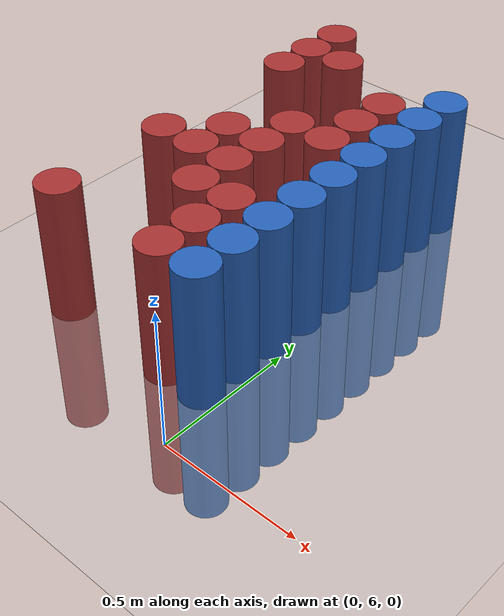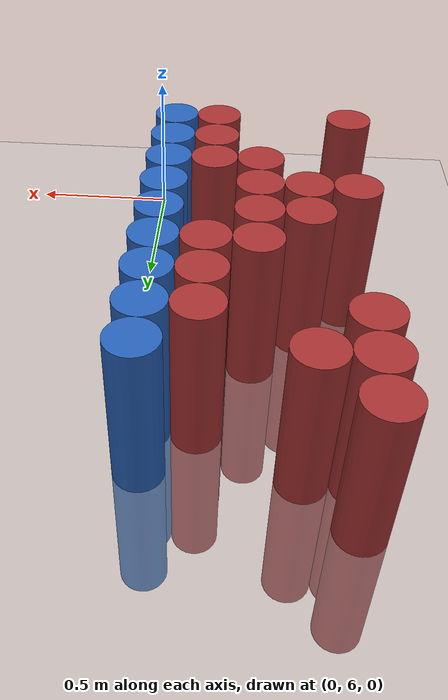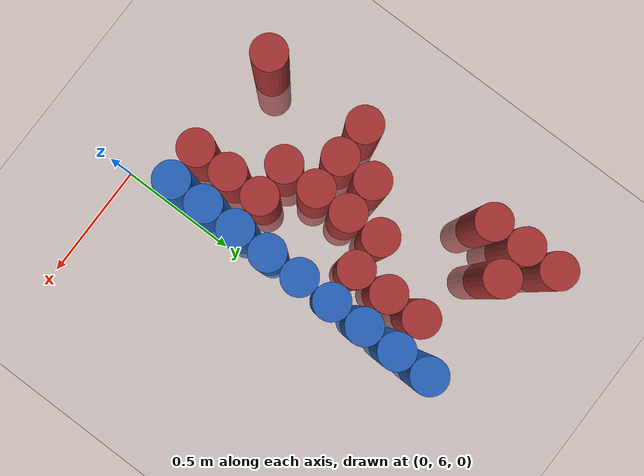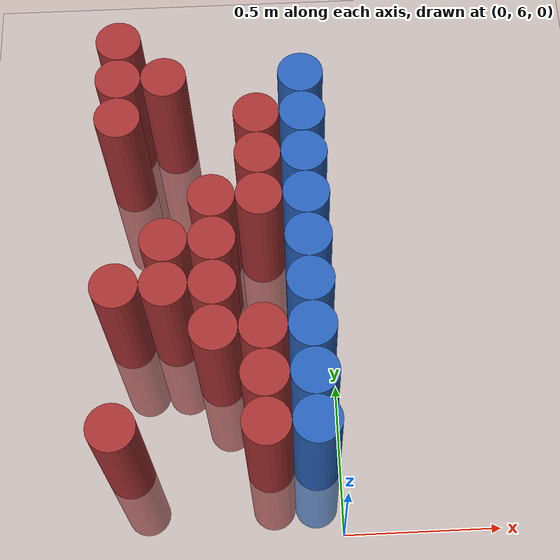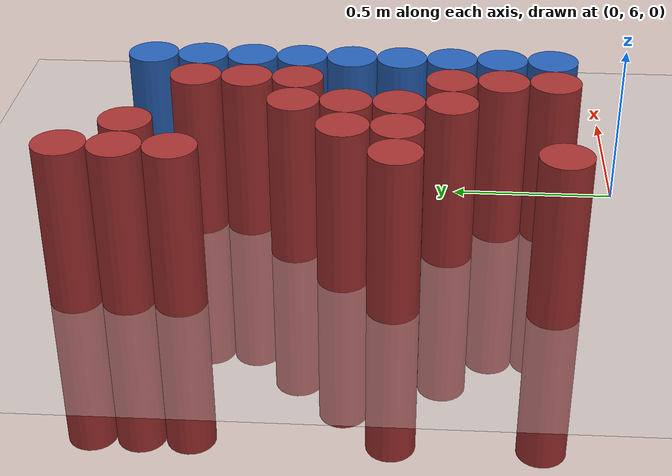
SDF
<sdf version="1.6">
 <world name="default">
  <model name="ground_plane">
   <static>1</static>
   <link name="link">
    <collision name="collision">
     <geometry><plane><normal>0 0 1</normal><size>100 100</size></plane></geometry>
     <surface><friction><ode><mu>100</mu><mu2>50</mu2></ode></friction></surface>
    </collision>
    <visual name="visual">
     <cast_shadows>0</cast_shadows>
     <geometry><plane><normal>0 0 1</normal><size>100 100</size></plane></geometry>
     <material>
      <script><uri>file://media/materials/scripts/gazebo.material</uri><name>Gazebo/Grey</name></script>
     </material>
    </visual>
   </link>
  </model>
  <model name="unit_cylinder_254">
   <static>1</static>
   <pose>-0.675000 6.225000 0.000000 0.000000 0.000000 0.000000</pose>
   <link name="link">
    <inertial>
     <mass>1</mass>
     <inertia><ixx>0.145833</ixx><ixy>0</ixy><ixz>0</ixz><iyy>0.145833</iyy><iyz>0</iyz><izz>0.125</izz></inertia>
    </inertial>
    <collision name="collision">
     <geometry><cylinder><radius>0.075000</radius><length>1</length></cylinder></geometry>
    </collision>
    <visual name="visual">
     <geometry><cylinder><radius>0.075000</radius><length>1</length></cylinder></geometry>
     <material>
      <ambient>0.648000 0.192000 0.192000 1</ambient>
      <diffuse>0.648000 0.192000 0.192000 1</diffuse>
     </material>
     <material>
      <script><name>Gazebo/Grey</name><uri>file://media/materials/scripts/gazebo.material</uri></script>
     </material>
    </visual>
   </link>
  </model>
  <model name="unit_cylinder_255">
   <static>1</static>
   <pose>-0.675000 6.675000 0.000000 0.000000 0.000000 0.000000</pose>
   <link name="link">
    <inertial>
     <mass>1</mass>
     <inertia><ixx>0.145833</ixx><ixy>0</ixy><ixz>0</ixz><iyy>0.145833</iyy><iyz>0</iyz><izz>0.125</izz></inertia>
    </inertial>
    <collision name="collision">
     <geometry><cylinder><radius>0.075000</radius><length>1</length></cylinder></geometry>
    </collision>
    <visual name="visual">
     <geometry><cylinder><radius>0.075000</radius><length>1</length></cylinder></geometry>
     <material>
      <ambient>0.648000 0.192000 0.192000 1</ambient>
      <diffuse>0.648000 0.192000 0.192000 1</diffuse>
     </material>
     <material>
      <script><name>Gazebo/Grey</name><uri>file://media/materials/scripts/gazebo.material</uri></script>
     </material>
    </visual>
   </link>
  </model>
  <model name="unit_cylinder_256">
   <static>1</static>
   <pose>-0.675000 7.275000 0.000000 0.000000 0.000000 0.000000</pose>
   <link name="link">
    <inertial>
     <mass>1</mass>
     <inertia><ixx>0.145833</ixx><ixy>0</ixy><ixz>0</ixz><iyy>0.145833</iyy><iyz>0</iyz><izz>0.125</izz></inertia>
    </inertial>
    <collision name="collision">
     <geometry><cylinder><radius>0.075000</radius><length>1</length></cylinder></geometry>
    </collision>
    <visual name="visual">
     <geometry><cylinder><radius>0.075000</radius><length>1</length></cylinder></geometry>
     <material>
      <ambient>0.648000 0.192000 0.192000 1</ambient>
      <diffuse>0.648000 0.192000 0.192000 1</diffuse>
     </material>
     <material>
      <script><name>Gazebo/Grey</name><uri>file://media/materials/scripts/gazebo.material</uri></script>
     </material>
    </visual>
   </link>
  </model>
  <model name="unit_cylinder_257">
   <static>1</static>
   <pose>-0.675000 7.425000 0.000000 0.000000 0.000000 0.000000</pose>
   <link name="link">
    <inertial>
     <mass>1</mass>
     <inertia><ixx>0.145833</ixx><ixy>0</ixy><ixz>0</ixz><iyy>0.145833</iyy><iyz>0</iyz><izz>0.125</izz></inertia>
    </inertial>
    <collision name="collision">
     <geometry><cylinder><radius>0.075000</radius><length>1</length></cylinder></geometry>
    </collision>
    <visual name="visual">
     <geometry><cylinder><radius>0.075000</radius><length>1</length></cylinder></geometry>
     <material>
      <ambient>0.648000 0.192000 0.192000 1</ambient>
      <diffuse>0.648000 0.192000 0.192000 1</diffuse>
     </material>
     <material>
      <script><name>Gazebo/Grey</name><uri>file://media/materials/scripts/gazebo.material</uri></script>
     </material>
    </visual>
   </link>
  </model>
  <model name="unit_cylinder_258">
   <static>1</static>
   <pose>-0.675000 7.575000 0.000000 0.000000 0.000000 0.000000</pose>
   <link name="link">
    <inertial>
     <mass>1</mass>
     <inertia><ixx>0.145833</ixx><ixy>0</ixy><ixz>0</ixz><iyy>0.145833</iyy><iyz>0</iyz><izz>0.125</izz></inertia>
    </inertial>
    <collision name="collision">
     <geometry><cylinder><radius>0.075000</radius><length>1</length></cylinder></geometry>
    </collision>
    <visual name="visual">
     <geometry><cylinder><radius>0.075000</radius><length>1</length></cylinder></geometry>
     <material>
      <ambient>0.648000 0.192000 0.192000 1</ambient>
      <diffuse>0.648000 0.192000 0.192000 1</diffuse>
     </material>
     <material>
      <script><name>Gazebo/Grey</name><uri>file://media/materials/scripts/gazebo.material</uri></script>
     </material>
    </visual>
   </link>
  </model>
  <model name="unit_cylinder_267">
   <static>1</static>
   <pose>-0.525000 6.675000 0.000000 0.000000 0.000000 0.000000</pose>
   <link name="link">
    <inertial>
     <mass>1</mass>
     <inertia><ixx>0.145833</ixx><ixy>0</ixy><ixz>0</ixz><iyy>0.145833</iyy><iyz>0</iyz><izz>0.125</izz></inertia>
    </inertial>
    <collision name="collision">
     <geometry><cylinder><radius>0.075000</radius><length>1</length></cylinder></geometry>
    </collision>
    <visual name="visual">
     <geometry><cylinder><radius>0.075000</radius><length>1</length></cylinder></geometry>
     <material>
      <ambient>0.648000 0.192000 0.192000 1</ambient>
      <diffuse>0.648000 0.192000 0.192000 1</diffuse>
     </material>
     <material>
      <script><name>Gazebo/Grey</name><uri>file://media/materials/scripts/gazebo.material</uri></script>
     </material>
    </visual>
   </link>
  </model>
  <model name="unit_cylinder_268">
   <static>1</static>
   <pose>-0.525000 6.825000 0.000000 0.000000 0.000000 0.000000</pose>
   <link name="link">
    <inertial>
     <mass>1</mass>
     <inertia><ixx>0.145833</ixx><ixy>0</ixy><ixz>0</ixz><iyy>0.145833</iyy><iyz>0</iyz><izz>0.125</izz></inertia>
    </inertial>
    <collision name="collision">
     <geometry><cylinder><radius>0.075000</radius><length>1</length></cylinder></geometry>
    </collision>
    <visual name="visual">
     <geometry><cylinder><radius>0.075000</radius><length>1</length></cylinder></geometry>
     <material>
      <ambient>0.648000 0.192000 0.192000 1</ambient>
      <diffuse>0.648000 0.192000 0.192000 1</diffuse>
     </material>
     <material>
      <script><name>Gazebo/Grey</name><uri>file://media/materials/scripts/gazebo.material</uri></script>
     </material>
    </visual>
   </link>
  </model>
  <model name="unit_cylinder_269">
   <static>1</static>
   <pose>-0.525000 7.425000 0.000000 0.000000 0.000000 0.000000</pose>
   <link name="link">
    <inertial>
     <mass>1</mass>
     <inertia><ixx>0.145833</ixx><ixy>0</ixy><ixz>0</ixz><iyy>0.145833</iyy><iyz>0</iyz><izz>0.125</izz></inertia>
    </inertial>
    <collision name="collision">
     <geometry><cylinder><radius>0.075000</radius><length>1</length></cylinder></geometry>
    </collision>
    <visual name="visual">
     <geometry><cylinder><radius>0.075000</radius><length>1</length></cylinder></geometry>
     <material>
      <ambient>0.648000 0.192000 0.192000 1</ambient>
      <diffuse>0.648000 0.192000 0.192000 1</diffuse>
     </material>
     <material>
      <script><name>Gazebo/Grey</name><uri>file://media/materials/scripts/gazebo.material</uri></script>
     </material>
    </visual>
   </link>
  </model>
  <model name="unit_cylinder_276">
   <static>1</static>
   <pose>-0.375000 6.525000 0.000000 0.000000 0.000000 0.000000</pose>
   <link name="link">
    <inertial>
     <mass>1</mass>
     <inertia><ixx>0.145833</ixx><ixy>0</ixy><ixz>0</ixz><iyy>0.145833</iyy><iyz>0</iyz><izz>0.125</izz></inertia>
    </inertial>
    <collision name="collision">
     <geometry><cylinder><radius>0.075000</radius><length>1</length></cylinder></geometry>
    </collision>
    <visual name="visual">
     <geometry><cylinder><radius>0.075000</radius><length>1</length></cylinder></geometry>
     <material>
      <ambient>0.648000 0.192000 0.192000 1</ambient>
      <diffuse>0.648000 0.192000 0.192000 1</diffuse>
     </material>
     <material>
      <script><name>Gazebo/Grey</name><uri>file://media/materials/scripts/gazebo.material</uri></script>
     </material>
    </visual>
   </link>
  </model>
  <model name="unit_cylinder_277">
   <static>1</static>
   <pose>-0.375000 6.675000 0.000000 0.000000 0.000000 0.000000</pose>
   <link name="link">
    <inertial>
     <mass>1</mass>
     <inertia><ixx>0.145833</ixx><ixy>0</ixy><ixz>0</ixz><iyy>0.145833</iyy><iyz>0</iyz><izz>0.125</izz></inertia>
    </inertial>
    <collision name="collision">
     <geometry><cylinder><radius>0.075000</radius><length>1</length></cylinder></geometry>
    </collision>
    <visual name="visual">
     <geometry><cylinder><radius>0.075000</radius><length>1</length></cylinder></geometry>
     <material>
      <ambient>0.648000 0.192000 0.192000 1</ambient>
      <diffuse>0.648000 0.192000 0.192000 1</diffuse>
     </material>
     <material>
      <script><name>Gazebo/Grey</name><uri>file://media/materials/scripts/gazebo.material</uri></script>
     </material>
    </visual>
   </link>
  </model>
  <model name="unit_cylinder_278">
   <static>1</static>
   <pose>-0.375000 6.825000 0.000000 0.000000 0.000000 0.000000</pose>
   <link name="link">
    <inertial>
     <mass>1</mass>
     <inertia><ixx>0.145833</ixx><ixy>0</ixy><ixz>0</ixz><iyy>0.145833</iyy><iyz>0</iyz><izz>0.125</izz></inertia>
    </inertial>
    <collision name="collision">
     <geometry><cylinder><radius>0.075000</radius><length>1</length></cylinder></geometry>
    </collision>
    <visual name="visual">
     <geometry><cylinder><radius>0.075000</radius><length>1</length></cylinder></geometry>
     <material>
      <ambient>0.648000 0.192000 0.192000 1</ambient>
      <diffuse>0.648000 0.192000 0.192000 1</diffuse>
     </material>
     <material>
      <script><name>Gazebo/Grey</name><uri>file://media/materials/scripts/gazebo.material</uri></script>
     </material>
    </visual>
   </link>
  </model>
  <model name="unit_cylinder_279">
   <static>1</static>
   <pose>-0.375000 6.975000 0.000000 0.000000 0.000000 0.000000</pose>
   <link name="link">
    <inertial>
     <mass>1</mass>
     <inertia><ixx>0.145833</ixx><ixy>0</ixy><ixz>0</ixz><iyy>0.145833</iyy><iyz>0</iyz><izz>0.125</izz></inertia>
    </inertial>
    <collision name="collision">
     <geometry><cylinder><radius>0.075000</radius><length>1</length></cylinder></geometry>
    </collision>
    <visual name="visual">
     <geometry><cylinder><radius>0.075000</radius><length>1</length></cylinder></geometry>
     <material>
      <ambient>0.648000 0.192000 0.192000 1</ambient>
      <diffuse>0.648000 0.192000 0.192000 1</diffuse>
     </material>
     <material>
      <script><name>Gazebo/Grey</name><uri>file://media/materials/scripts/gazebo.material</uri></script>
     </material>
    </visual>
   </link>
  </model>
  <model name="unit_cylinder_285">
   <static>1</static>
   <pose>-0.225000 6.225000 0.000000 0.000000 0.000000 0.000000</pose>
   <link name="link">
    <inertial>
     <mass>1</mass>
     <inertia><ixx>0.145833</ixx><ixy>0</ixy><ixz>0</ixz><iyy>0.145833</iyy><iyz>0</iyz><izz>0.125</izz></inertia>
    </inertial>
    <collision name="collision">
     <geometry><cylinder><radius>0.075000</radius><length>1</length></cylinder></geometry>
    </collision>
    <visual name="visual">
     <geometry><cylinder><radius>0.075000</radius><length>1</length></cylinder></geometry>
     <material>
      <ambient>0.648000 0.192000 0.192000 1</ambient>
      <diffuse>0.648000 0.192000 0.192000 1</diffuse>
     </material>
     <material>
      <script><name>Gazebo/Grey</name><uri>file://media/materials/scripts/gazebo.material</uri></script>
     </material>
    </visual>
   </link>
  </model>
  <model name="unit_cylinder_286">
   <static>1</static>
   <pose>-0.225000 6.375000 0.000000 0.000000 0.000000 0.000000</pose>
   <link name="link">
    <inertial>
     <mass>1</mass>
     <inertia><ixx>0.145833</ixx><ixy>0</ixy><ixz>0</ixz><iyy>0.145833</iyy><iyz>0</iyz><izz>0.125</izz></inertia>
    </inertial>
    <collision name="collision">
     <geometry><cylinder><radius>0.075000</radius><length>1</length></cylinder></geometry>
    </collision>
    <visual name="visual">
     <geometry><cylinder><radius>0.075000</radius><length>1</length></cylinder></geometry>
     <material>
      <ambient>0.648000 0.192000 0.192000 1</ambient>
      <diffuse>0.648000 0.192000 0.192000 1</diffuse>
     </material>
     <material>
      <script><name>Gazebo/Grey</name><uri>file://media/materials/scripts/gazebo.material</uri></script>
     </material>
    </visual>
   </link>
  </model>
  <model name="unit_cylinder_287">
   <static>1</static>
   <pose>-0.225000 6.525000 0.000000 0.000000 0.000000 0.000000</pose>
   <link name="link">
    <inertial>
     <mass>1</mass>
     <inertia><ixx>0.145833</ixx><ixy>0</ixy><ixz>0</ixz><iyy>0.145833</iyy><iyz>0</iyz><izz>0.125</izz></inertia>
    </inertial>
    <collision name="collision">
     <geometry><cylinder><radius>0.075000</radius><length>1</length></cylinder></geometry>
    </collision>
    <visual name="visual">
     <geometry><cylinder><radius>0.075000</radius><length>1</length></cylinder></geometry>
     <material>
      <ambient>0.648000 0.192000 0.192000 1</ambient>
      <diffuse>0.648000 0.192000 0.192000 1</diffuse>
     </material>
     <material>
      <script><name>Gazebo/Grey</name><uri>file://media/materials/scripts/gazebo.material</uri></script>
     </material>
    </visual>
   </link>
  </model>
  <model name="unit_cylinder_288">
   <static>1</static>
   <pose>-0.225000 6.975000 0.000000 0.000000 0.000000 0.000000</pose>
   <link name="link">
    <inertial>
     <mass>1</mass>
     <inertia><ixx>0.145833</ixx><ixy>0</ixy><ixz>0</ixz><iyy>0.145833</iyy><iyz>0</iyz><izz>0.125</izz></inertia>
    </inertial>
    <collision name="collision">
     <geometry><cylinder><radius>0.075000</radius><length>1</length></cylinder></geometry>
    </collision>
    <visual name="visual">
     <geometry><cylinder><radius>0.075000</radius><length>1</length></cylinder></geometry>
     <material>
      <ambient>0.648000 0.192000 0.192000 1</ambient>
      <diffuse>0.648000 0.192000 0.192000 1</diffuse>
     </material>
     <material>
      <script><name>Gazebo/Grey</name><uri>file://media/materials/scripts/gazebo.material</uri></script>
     </material>
    </visual>
   </link>
  </model>
  <model name="unit_cylinder_289">
   <static>1</static>
   <pose>-0.225000 7.125000 0.000000 0.000000 0.000000 0.000000</pose>
   <link name="link">
    <inertial>
     <mass>1</mass>
     <inertia><ixx>0.145833</ixx><ixy>0</ixy><ixz>0</ixz><iyy>0.145833</iyy><iyz>0</iyz><izz>0.125</izz></inertia>
    </inertial>
    <collision name="collision">
     <geometry><cylinder><radius>0.075000</radius><length>1</length></cylinder></geometry>
    </collision>
    <visual name="visual">
     <geometry><cylinder><radius>0.075000</radius><length>1</length></cylinder></geometry>
     <material>
      <ambient>0.648000 0.192000 0.192000 1</ambient>
      <diffuse>0.648000 0.192000 0.192000 1</diffuse>
     </material>
     <material>
      <script><name>Gazebo/Grey</name><uri>file://media/materials/scripts/gazebo.material</uri></script>
     </material>
    </visual>
   </link>
  </model>
  <model name="unit_cylinder_290">
   <static>1</static>
   <pose>-0.225000 7.275000 0.000000 0.000000 0.000000 0.000000</pose>
   <link name="link">
    <inertial>
     <mass>1</mass>
     <inertia><ixx>0.145833</ixx><ixy>0</ixy><ixz>0</ixz><iyy>0.145833</iyy><iyz>0</iyz><izz>0.125</izz></inertia>
    </inertial>
    <collision name="collision">
     <geometry><cylinder><radius>0.075000</radius><length>1</length></cylinder></geometry>
    </collision>
    <visual name="visual">
     <geometry><cylinder><radius>0.075000</radius><length>1</length></cylinder></geometry>
     <material>
      <ambient>0.648000 0.192000 0.192000 1</ambient>
      <diffuse>0.648000 0.192000 0.192000 1</diffuse>
     </material>
     <material>
      <script><name>Gazebo/Grey</name><uri>file://media/materials/scripts/gazebo.material</uri></script>
     </material>
    </visual>
   </link>
  </model>
  <model name="unit_cylinder_303">
   <static>1</static>
   <pose>-0.075000 6.225000 0.000000 0.000000 0.000000 0.000000</pose>
   <link name="link">
    <inertial>
     <mass>1</mass>
     <inertia><ixx>0.145833</ixx><ixy>0</ixy><ixz>0</ixz><iyy>0.145833</iyy><iyz>0</iyz><izz>0.125</izz></inertia>
    </inertial>
    <collision name="collision">
     <geometry><cylinder><radius>0.075000</radius><length>1</length></cylinder></geometry>
    </collision>
    <visual name="visual">
     <geometry><cylinder><radius>0.075000</radius><length>1</length></cylinder></geometry>
     <material>
      <ambient>0.152000 0.379000 0.720000 1</ambient>
      <diffuse>0.152000 0.379000 0.720000 1</diffuse>
     </material>
     <material>
      <script><name>Gazebo/Grey</name><uri>file://media/materials/scripts/gazebo.material</uri></script>
     </material>
    </visual>
   </link>
  </model>
  <model name="unit_cylinder_304">
   <static>1</static>
   <pose>-0.075000 6.375000 0.000000 0.000000 0.000000 0.000000</pose>
   <link name="link">
    <inertial>
     <mass>1</mass>
     <inertia><ixx>0.145833</ixx><ixy>0</ixy><ixz>0</ixz><iyy>0.145833</iyy><iyz>0</iyz><izz>0.125</izz></inertia>
    </inertial>
    <collision name="collision">
     <geometry><cylinder><radius>0.075000</radius><length>1</length></cylinder></geometry>
    </collision>
    <visual name="visual">
     <geometry><cylinder><radius>0.075000</radius><length>1</length></cylinder></geometry>
     <material>
      <ambient>0.152000 0.379000 0.720000 1</ambient>
      <diffuse>0.152000 0.379000 0.720000 1</diffuse>
     </material>
     <material>
      <script><name>Gazebo/Grey</name><uri>file://media/materials/scripts/gazebo.material</uri></script>
     </material>
    </visual>
   </link>
  </model>
  <model name="unit_cylinder_305">
   <static>1</static>
   <pose>-0.075000 6.525000 0.000000 0.000000 0.000000 0.000000</pose>
   <link name="link">
    <inertial>
     <mass>1</mass>
     <inertia><ixx>0.145833</ixx><ixy>0</ixy><ixz>0</ixz><iyy>0.145833</iyy><iyz>0</iyz><izz>0.125</izz></inertia>
    </inertial>
    <collision name="collision">
     <geometry><cylinder><radius>0.075000</radius><length>1</length></cylinder></geometry>
    </collision>
    <visual name="visual">
     <geometry><cylinder><radius>0.075000</radius><length>1</length></cylinder></geometry>
     <material>
      <ambient>0.152000 0.379000 0.720000 1</ambient>
      <diffuse>0.152000 0.379000 0.720000 1</diffuse>
     </material>
     <material>
      <script><name>Gazebo/Grey</name><uri>file://media/materials/scripts/gazebo.material</uri></script>
     </material>
    </visual>
   </link>
  </model>
  <model name="unit_cylinder_306">
   <static>1</static>
   <pose>-0.075000 6.675000 0.000000 0.000000 0.000000 0.000000</pose>
   <link name="link">
    <inertial>
     <mass>1</mass>
     <inertia><ixx>0.145833</ixx><ixy>0</ixy><ixz>0</ixz><iyy>0.145833</iyy><iyz>0</iyz><izz>0.125</izz></inertia>
    </inertial>
    <collision name="collision">
     <geometry><cylinder><radius>0.075000</radius><length>1</length></cylinder></geometry>
    </collision>
    <visual name="visual">
     <geometry><cylinder><radius>0.075000</radius><length>1</length></cylinder></geometry>
     <material>
      <ambient>0.152000 0.379000 0.720000 1</ambient>
      <diffuse>0.152000 0.379000 0.720000 1</diffuse>
     </material>
     <material>
      <script><name>Gazebo/Grey</name><uri>file://media/materials/scripts/gazebo.material</uri></script>
     </material>
    </visual>
   </link>
  </model>
  <model name="unit_cylinder_307">
   <static>1</static>
   <pose>-0.075000 6.825000 0.000000 0.000000 0.000000 0.000000</pose>
   <link name="link">
    <inertial>
     <mass>1</mass>
     <inertia><ixx>0.145833</ixx><ixy>0</ixy><ixz>0</ixz><iyy>0.145833</iyy><iyz>0</iyz><izz>0.125</izz></inertia>
    </inertial>
    <collision name="collision">
     <geometry><cylinder><radius>0.075000</radius><length>1</length></cylinder></geometry>
    </collision>
    <visual name="visual">
     <geometry><cylinder><radius>0.075000</radius><length>1</length></cylinder></geometry>
     <material>
      <ambient>0.152000 0.379000 0.720000 1</ambient>
      <diffuse>0.152000 0.379000 0.720000 1</diffuse>
     </material>
     <material>
      <script><name>Gazebo/Grey</name><uri>file://media/materials/scripts/gazebo.material</uri></script>
     </material>
    </visual>
   </link>
  </model>
  <model name="unit_cylinder_308">
   <static>1</static>
   <pose>-0.075000 6.975000 0.000000 0.000000 0.000000 0.000000</pose>
   <link name="link">
    <inertial>
     <mass>1</mass>
     <inertia><ixx>0.145833</ixx><ixy>0</ixy><ixz>0</ixz><iyy>0.145833</iyy><iyz>0</iyz><izz>0.125</izz></inertia>
    </inertial>
    <collision name="collision">
     <geometry><cylinder><radius>0.075000</radius><length>1</length></cylinder></geometry>
    </collision>
    <visual name="visual">
     <geometry><cylinder><radius>0.075000</radius><length>1</length></cylinder></geometry>
     <material>
      <ambient>0.152000 0.379000 0.720000 1</ambient>
      <diffuse>0.152000 0.379000 0.720000 1</diffuse>
     </material>
     <material>
      <script><name>Gazebo/Grey</name><uri>file://media/materials/scripts/gazebo.material</uri></script>
     </material>
    </visual>
   </link>
  </model>
  <model name="unit_cylinder_309">
   <static>1</static>
   <pose>-0.075000 7.125000 0.000000 0.000000 0.000000 0.000000</pose>
   <link name="link">
    <inertial>
     <mass>1</mass>
     <inertia><ixx>0.145833</ixx><ixy>0</ixy><ixz>0</ixz><iyy>0.145833</iyy><iyz>0</iyz><izz>0.125</izz></inertia>
    </inertial>
    <collision name="collision">
     <geometry><cylinder><radius>0.075000</radius><length>1</length></cylinder></geometry>
    </collision>
    <visual name="visual">
     <geometry><cylinder><radius>0.075000</radius><length>1</length></cylinder></geometry>
     <material>
      <ambient>0.152000 0.379000 0.720000 1</ambient>
      <diffuse>0.152000 0.379000 0.720000 1</diffuse>
     </material>
     <material>
      <script><name>Gazebo/Grey</name><uri>file://media/materials/scripts/gazebo.material</uri></script>
     </material>
    </visual>
   </link>
  </model>
  <model name="unit_cylinder_310">
   <static>1</static>
   <pose>-0.075000 7.275000 0.000000 0.000000 0.000000 0.000000</pose>
   <link name="link">
    <inertial>
     <mass>1</mass>
     <inertia><ixx>0.145833</ixx><ixy>0</ixy><ixz>0</ixz><iyy>0.145833</iyy><iyz>0</iyz><izz>0.125</izz></inertia>
    </inertial>
    <collision name="collision">
     <geometry><cylinder><radius>0.075000</radius><length>1</length></cylinder></geometry>
    </collision>
    <visual name="visual">
     <geometry><cylinder><radius>0.075000</radius><length>1</length></cylinder></geometry>
     <material>
      <ambient>0.152000 0.379000 0.720000 1</ambient>
      <diffuse>0.152000 0.379000 0.720000 1</diffuse>
     </material>
     <material>
      <script><name>Gazebo/Grey</name><uri>file://media/materials/scripts/gazebo.material</uri></script>
     </material>
    </visual>
   </link>
  </model>
  <model name="unit_cylinder_311">
   <static>1</static>
   <pose>-0.075000 7.425000 0.000000 0.000000 0.000000 0.000000</pose>
   <link name="link">
    <inertial>
     <mass>1</mass>
     <inertia><ixx>0.145833</ixx><ixy>0</ixy><ixz>0</ixz><iyy>0.145833</iyy><iyz>0</iyz><izz>0.125</izz></inertia>
    </inertial>
    <collision name="collision">
     <geometry><cylinder><radius>0.075000</radius><length>1</length></cylinder></geometry>
    </collision>
    <visual name="visual">
     <geometry><cylinder><radius>0.075000</radius><length>1</length></cylinder></geometry>
     <material>
      <ambient>0.152000 0.379000 0.720000 1</ambient>
      <diffuse>0.152000 0.379000 0.720000 1</diffuse>
     </material>
     <material>
      <script><name>Gazebo/Grey</name><uri>file://media/materials/scripts/gazebo.material</uri></script>
     </material>
    </visual>
   </link>
  </model>
 </world>
</sdf>
